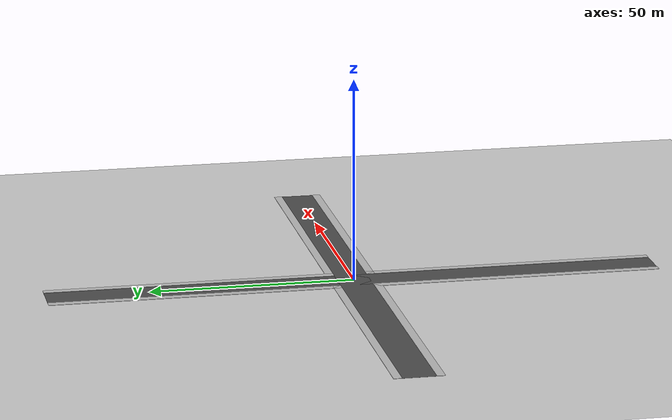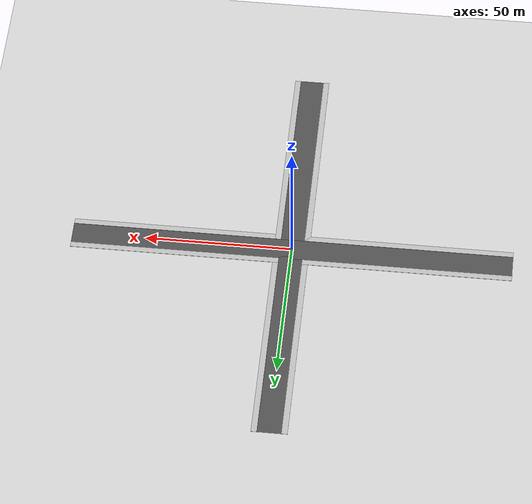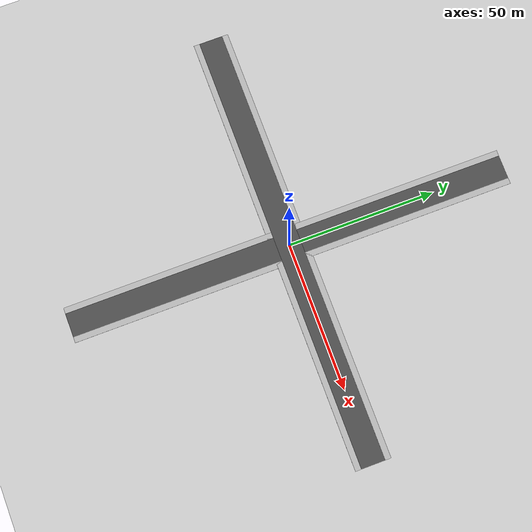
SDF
<sdf version="1.7">
 <world name="blueprint_intersection_world">
  <include><uri>model://sun</uri></include>
  <include><uri>model://ground_plane</uri></include>
  <model name="road_ns">
   <static>true</static>
   <pose>0 0 0.01 0 0 0</pose>
   <link name="link">
    <visual name="visual">
     <geometry><box><size>8 150 0.02</size></box></geometry>
     <material>
      <script><uri>file://media/materials/scripts/gazebo.material</uri><name>Gazebo/DarkGrey</name></script>
     </material>
    </visual>
    <collision name="collision"><geometry><box><size>8 150 0.02</size></box></geometry></collision>
   </link>
  </model>
  <model name="road_ew">
   <static>true</static>
   <pose>0 0 0.01 0 0 0</pose>
   <link name="link">
    <visual name="visual">
     <geometry><box><size>150 8 0.02</size></box></geometry>
     <material>
      <script><uri>file://media/materials/scripts/gazebo.material</uri><name>Gazebo/DarkGrey</name></script>
     </material>
    </visual>
    <collision name="collision"><geometry><box><size>150 8 0.02</size></box></geometry></collision>
   </link>
  </model>
  <model name="sidewalk_ns_right">
   <static>true</static>
   <link name="right_south">
    <pose>5.0 -39.5 0.05 0 0 0</pose>
    <visual name="v_right_south"><geometry><box><size>2 71 0.1</size></box></geometry></visual>
    <collision name="c_right_south"><geometry><box><size>2 71 0.1</size></box></geometry></collision>
   </link>
   <link name="right_north">
    <pose>5.0 39.5 0.05 0 0 0</pose>
    <visual name="v_right_north"><geometry><box><size>2 71 0.1</size></box></geometry></visual>
    <collision name="c_right_north"><geometry><box><size>2 71 0.1</size></box></geometry></collision>
   </link>
  </model>
  <model name="sidewalk_ns_left">
   <static>true</static>
   <link name="left_south">
    <pose>-5.0 -39.5 0.05 0 0 0</pose>
    <visual name="v_left_south"><geometry><box><size>2 71 0.1</size></box></geometry></visual>
    <collision name="c_left_south"><geometry><box><size>2 71 0.1</size></box></geometry></collision>
   </link>
   <link name="left_north">
    <pose>-5.0 39.5 0.05 0 0 0</pose>
    <visual name="v_left_north"><geometry><box><size>2 71 0.1</size></box></geometry></visual>
    <collision name="c_left_north"><geometry><box><size>2 71 0.1</size></box></geometry></collision>
   </link>
  </model>
  <model name="sidewalk_ew_top">
   <static>true</static>
   <link name="top_west">
    <pose>-39.5 5.0 0.05 0 0 0</pose>
    <visual name="v_top_west"><geometry><box><size>71 2 0.1</size></box></geometry></visual>
    <collision name="c_top_west"><geometry><box><size>71 2 0.1</size></box></geometry></collision>
   </link>
   <link name="top_east">
    <pose>39.5 5.0 0.05 0 0 0</pose>
    <visual name="v_top_east"><geometry><box><size>71 2 0.1</size></box></geometry></visual>
    <collision name="c_top_east"><geometry><box><size>71 2 0.1</size></box></geometry></collision>
   </link>
  </model>
  <model name="sidewalk_ew_bottom">
   <static>true</static>
   <link name="bottom_west">
    <pose>-39.5 -5.0 0.05 0 0 0</pose>
    <visual name="v_bottom_west"><geometry><box><size>71 2 0.1</size></box></geometry></visual>
    <collision name="c_bottom_west"><geometry><box><size>71 2 0.1</size></box></geometry></collision>
   </link>
   <link name="bottom_east">
    <pose>39.5 -5.0 0.05 0 0 0</pose>
    <visual name="v_bottom_east"><geometry><box><size>71 2 0.1</size></box></geometry></visual>
    <collision name="c_bottom_east"><geometry><box><size>71 2 0.1</size></box></geometry></collision>
   </link>
  </model>
 </world>
</sdf>
